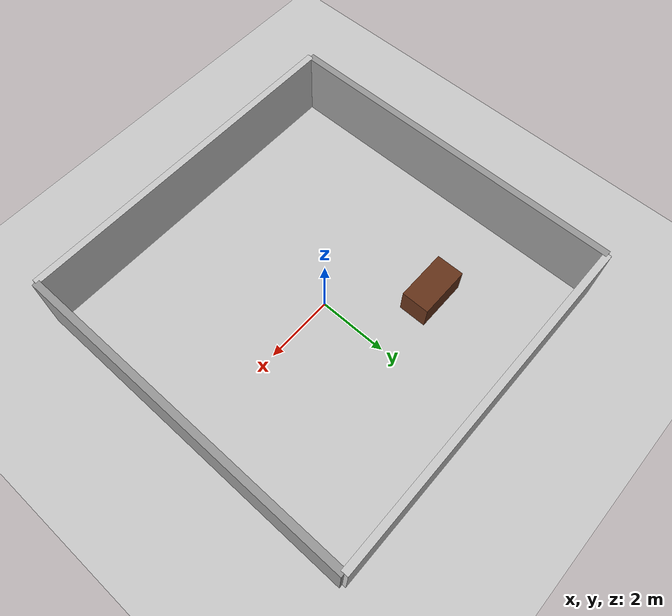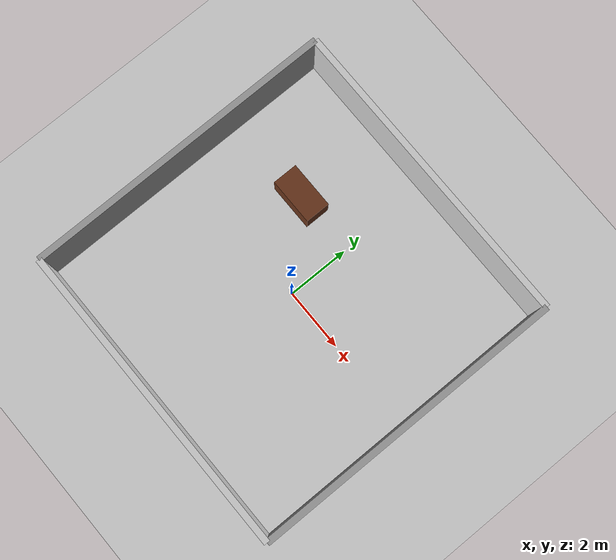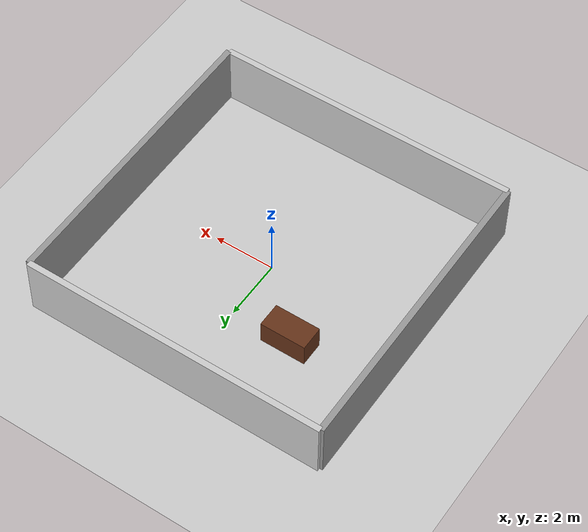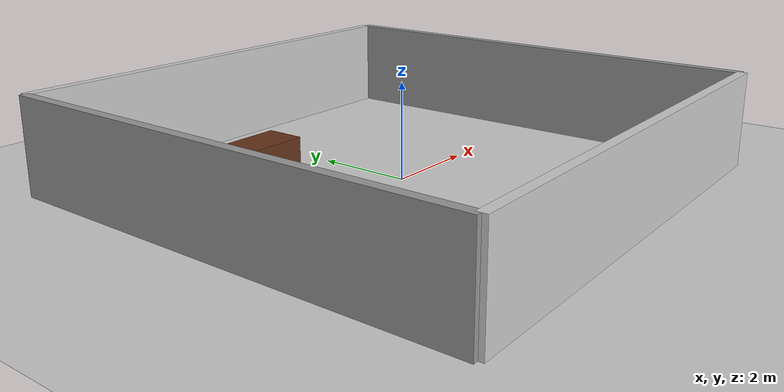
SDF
<sdf version="1.7">
 <world name="basic_room">
  <include><uri>model://sun</uri></include>
  <include><uri>model://ground_plane</uri></include>
  <model name="wall_back">
   <pose>0 5 1 0 0 0</pose>
   <link name="link">
    <collision name="collision"><geometry><box><size>10 0.2 2</size></box></geometry></collision>
    <visual name="visual">
     <geometry><box><size>10 0.2 2</size></box></geometry>
     <material><ambient>0.8 0.8 0.8 1</ambient><diffuse>0.8 0.8 0.8 1</diffuse></material>
    </visual>
   </link>
  </model>
  <model name="wall_front">
   <pose>0 -5 1 0 0 3.14159</pose>
   <link name="link">
    <collision name="collision"><geometry><box><size>10 0.2 2</size></box></geometry></collision>
    <visual name="visual">
     <geometry><box><size>10 0.2 2</size></box></geometry>
     <material><ambient>0.8 0.8 0.8 1</ambient><diffuse>0.8 0.8 0.8 1</diffuse></material>
    </visual>
   </link>
  </model>
  <model name="wall_left">
   <pose>-5 0 1 0 0 1.5708</pose>
   <link name="link">
    <collision name="collision"><geometry><box><size>10 0.2 2</size></box></geometry></collision>
    <visual name="visual">
     <geometry><box><size>10 0.2 2</size></box></geometry>
     <material><ambient>0.6 0.6 0.6 1</ambient><diffuse>0.6 0.6 0.6 1</diffuse></material>
    </visual>
   </link>
  </model>
  <model name="wall_right">
   <pose>5 0 1 0 0 -1.5708</pose>
   <link name="link">
    <collision name="collision"><geometry><box><size>10 0.2 2</size></box></geometry></collision>
    <visual name="visual">
     <geometry><box><size>10 0.2 2</size></box></geometry>
     <material><ambient>0.6 0.6 0.6 1</ambient><diffuse>0.6 0.6 0.6 1</diffuse></material>
    </visual>
   </link>
  </model>
  <model name="table">
   <pose>-2 2 0.5 0 0 0</pose>
   <link name="link">
    <collision name="collision"><geometry><box><size>1.5 0.8 0.8</size></box></geometry></collision>
    <visual name="visual">
     <geometry><box><size>1.5 0.8 0.8</size></box></geometry>
     <material><ambient>0.4 0.2 0.1 1</ambient><diffuse>0.4 0.2 0.1 1</diffuse></material>
    </visual>
   </link>
  </model>
 </world>
</sdf>
